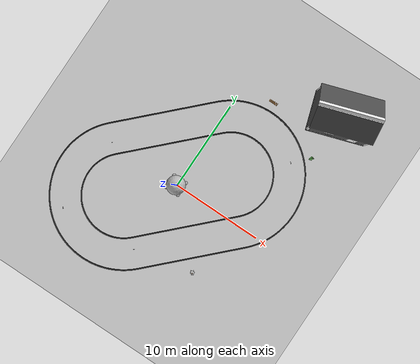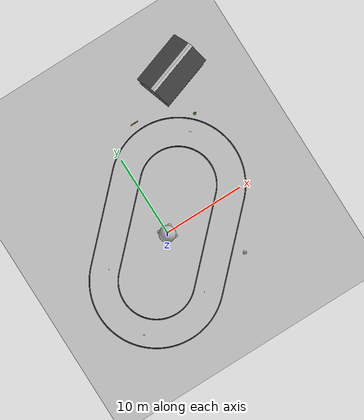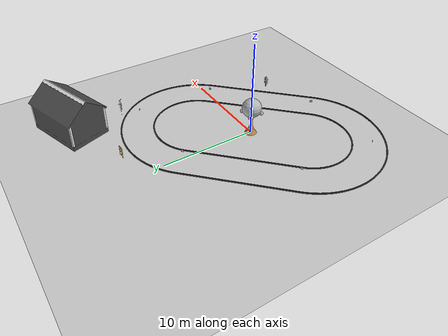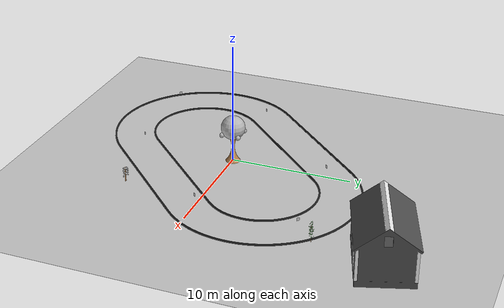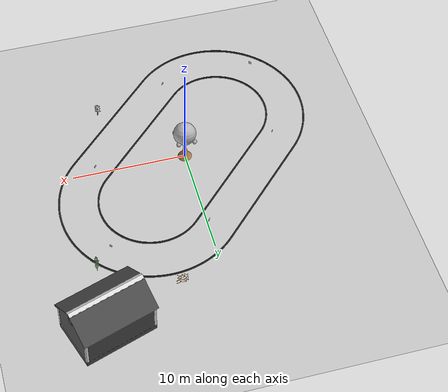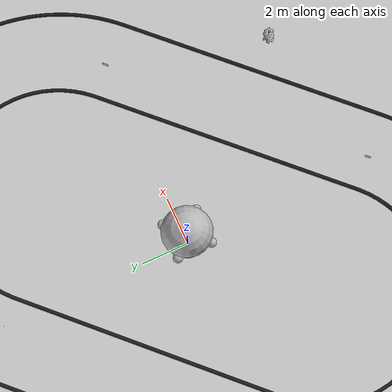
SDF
<?xml version="1.0" ?>
<sdf version="1.6">
  <world name="default">
    <gui>
      <camera name="user_camera">
        <pose frame=''>-14.5786 -15.2753 10.6425 0 0.579643 0.800194</pose>
        <view_controller>orbit</view_controller>
        <projection_type>perspective</projection_type>
      </camera>
    </gui>
    <scene>
      <sky>
        <clouds>
          <speed>12</speed>
        </clouds>
      </sky>
      <ambient>1.0 1.0 1.0 1.0</ambient>
      <shadows>true</shadows>
    </scene>

    <!-- A global light source -->
    <include>
      <uri>model://urdf/models/sun</uri>
    </include>
    <include>
      <name>track</name>
      <uri>model://urdf/models/track</uri>
      <pose>0 0 0.0762 0 0 0.785398</pose>
    </include>
    <include>
      <name>blended_plane</name>
      <uri>model://urdf/models/blended_track</uri>
      <pose>0 0 0 0 0 0.785398</pose>
    </include>
    <!-- A ground plane -->
    <include>
      <name>tree</name>
      <uri>model://urdf/models/tree</uri>
      <pose>0 0 0 0 0 0</pose>
    </include>
    <include>
      <name>bamboo</name>
      <uri>model://urdf/models/bamboo</uri>
      <pose>10 10 0 0 0 0</pose>
    </include>
    <include>
      <name>bush</name>
      <uri>model://urdf/models/bush</uri>
      <pose>6.4 -6.67 0.6 0 0 0</pose>
    </include>
    <include>
      <name>fence</name>
      <uri>model://urdf/models/fence</uri>
      <pose>3.1 12.8 0 0 0 0</pose>
    </include>
    <include>
      <name>shed</name>
      <uri>model://urdf/models/shed</uri>
      <pose>14.1 14.4 0 0 0 1.89</pose>
    </include>

    <include>
      <static>true</static>
      <name>aruco_tag_0</name>
      <uri>model://urdf/models/aruco_tag_0</uri>
      <pose>0 -8 1 0 1.57 3.93</pose>
    </include>
    <include>
      <static>true</static>
      <name>aruco_tag_1</name>
      <uri>model://urdf/models/aruco_tag_1</uri>
      <pose>8 0 1 0 1.57 3.93</pose>
    </include>
    <include>
      <static>true</static>
      <name>aruco_tag_2</name>
      <uri>model://urdf/models/aruco_tag_2</uri>
      <pose>8.5 8.5 1 0 1.57 5.50</pose>
    </include>
    <include>
      <static>true</static>
      <name>aruco_tag_3</name>
      <uri>model://urdf/models/aruco_tag_3</uri>
      <pose>0 8 1 0 1.57 .785</pose>
    </include>
    <include>
      <static>true</static>
      <name>aruco_tag_4</name>
      <uri>model://urdf/models/aruco_tag_4</uri>
      <pose>-8 0 1 0 1.57 .785</pose>
    </include>
    <include>
      <static>true</static>
      <name>aruco_tag_5</name>
      <uri>model://urdf/models/aruco_tag_5</uri>
      <pose>-8.5 -8.5 1 0 1.57 2.35</pose>
    </include>

  </world>
</sdf>

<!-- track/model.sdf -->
<sdf version="1.5">
  <model name="track">
    <static>true</static>
    <link name="link">
      <collision name="collision">
        <geometry>
          <mesh>
            <uri>model://urdf/cad/autoRallyTrack.dae</uri>
            <scale>1.0 1.0 1.0</scale>
          </mesh>
        </geometry>
        <surface>
          <friction>
            <ode>
              <mu>100</mu>
              <mu2>50</mu2>
            </ode>
          </friction>
        </surface>
      </collision>
      <visual name="visual">
        <cast_shadows>false</cast_shadows>
        <geometry>
          <mesh>
            <uri>model://urdf/cad/autoRallyTrack.dae</uri>
            <scale>1.0 1.0 1.0</scale>
          </mesh>
        </geometry>
        <material>
          <script>
            <uri>model://urdf/gazebo.material</uri>
            <name>Gazebo/Black</name>
          </script>
        </material>
      </visual>
    </link>
  </model>
</sdf>

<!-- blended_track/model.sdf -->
<sdf version="1.5">
  <model name="dirt_plane">
    <static>true</static>
    <link name="link">
      <collision name="collision">
        <geometry>
          <plane>
            <normal>0 0 1</normal>
            <size>90 90</size>
          </plane>
        </geometry>
        <laser_retro>0.0</laser_retro>
        <surface>
          <friction>
            <ode>
              <mu>100</mu>
              <mu2>50</mu2>
            </ode>
          </friction>
        </surface>
      </collision>
      <visual name="visual">
        <cast_shadows>false</cast_shadows>
        <geometry>
          <plane>
            <normal>0 0 1</normal>
            <size>90 90</size>
          </plane>
        </geometry>
        <laser_retro>0.0</laser_retro>
        <material>
          <script>
            <uri>model://urdf/gazebo.material</uri>
            <name>Gazebo/Texture_blend</name>
          </script>
        </material>
      </visual>
    </link>
  </model>
</sdf>

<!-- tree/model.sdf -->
<sdf version="1.5">
  <model name="tree">
    <static>true</static>
    <link name="trunk">
      <collision name="collision">
        <geometry>
          <mesh>
            <uri>model://urdf/cad/tree.dae</uri>
            <scale>1 1 1</scale>
          </mesh>
        </geometry>
        <surface>
          <friction>
            <ode>
              <mu>100</mu>
              <mu2>50</mu2>
            </ode>
          </friction>
        </surface>
      </collision>
      <visual name="visual">
        <cast_shadows>false</cast_shadows>
        <geometry>
          <mesh>
            <uri>model://urdf/cad/tree.dae</uri>
            <scale>1 1 1</scale>
          </mesh>
        </geometry>
        <material>
          <script>
            <uri>file://media/materials/scripts/gazebo.material</uri>
            <name>Gazebo/WoodPallet</name>
          </script>
        </material>
      </visual>
    </link>
    <link name="center_ball">
      <pose frame=''>0 0 3 0 -0 0</pose>
      <collision name="collision">
        <geometry>
          <sphere>
            <radius>1.0</radius>
          </sphere>
        </geometry>
        <surface>
          <friction>
            <ode>
              <mu>100</mu>
              <mu2>50</mu2>
            </ode>
          </friction>
        </surface>
      </collision>
      <visual name="visual">
        <cast_shadows>false</cast_shadows>
        <geometry>
          <sphere>
            <radius>1.0</radius>
          </sphere>
        </geometry>
        <material>
          <script>
            <uri>model://urdf/gazebo.material</uri>
            <name>Gazebo/Leaf_image</name>
          </script>
        </material>
      </visual>
    </link>
    <link name="ball_1">
      <pose frame=''>0.7 0.7 2.5 0 -0 0</pose>
      <collision name="collision">
        <geometry>
          <sphere>
            <radius>0.2</radius>
          </sphere>
        </geometry>
        <surface>
          <friction>
            <ode>
              <mu>100</mu>
              <mu2>50</mu2>
            </ode>
          </friction>
        </surface>
      </collision>
      <visual name="visual">
        <cast_shadows>false</cast_shadows>
        <geometry>
          <sphere>
            <radius>0.2</radius>
          </sphere>
        </geometry>
        <material>
          <script>
            <uri>model://urdf/gazebo.material</uri>
            <name>Gazebo/Leaf_image</name>
          </script>
        </material>
      </visual>
    </link>
    <link name="ball_2">
      <pose frame=''>-0.7 -0.7 2.5 0 -0 0</pose>
      <collision name="collision">
        <geometry>
          <sphere>
            <radius>0.2</radius>
          </sphere>
        </geometry>
        <surface>
          <friction>
            <ode>
              <mu>100</mu>
              <mu2>50</mu2>
            </ode>
          </friction>
        </surface>
      </collision>
      <visual name="visual">
        <cast_shadows>false</cast_shadows>
        <geometry>
          <sphere>
            <radius>0.2</radius>
          </sphere>
        </geometry>
        <material>
          <script>
            <uri>model://urdf/gazebo.material</uri>
            <name>Gazebo/Leaf_image</name>
          </script>
        </material>
      </visual>
    </link>
    <link name="ball_3">
      <pose frame=''>-0.7 0.7 2.5 0 -0 0</pose>
      <collision name="collision">
        <geometry>
          <sphere>
            <radius>0.2</radius>
          </sphere>
        </geometry>
        <surface>
          <friction>
            <ode>
              <mu>100</mu>
              <mu2>50</mu2>
            </ode>
          </friction>
        </surface>
      </collision>
      <visual name="visual">
        <cast_shadows>false</cast_shadows>
        <geometry>
          <sphere>
            <radius>0.2</radius>
          </sphere>
        </geometry>
        <material>
          <script>
            <uri>model://urdf/gazebo.material</uri>
            <name>Gazebo/Leaf_image</name>
          </script>
        </material>
      </visual>
    </link>
    <link name="ball_4">
      <pose frame=''>0.7 -0.7 2.5 0 -0 0</pose>
      <collision name="collision">
        <geometry>
          <sphere>
            <radius>0.2</radius>
          </sphere>
        </geometry>
        <surface>
          <friction>
            <ode>
              <mu>100</mu>
              <mu2>50</mu2>
            </ode>
          </friction>
        </surface>
      </collision>
      <visual name="visual">
        <cast_shadows>false</cast_shadows>
        <geometry>
          <sphere>
            <radius>0.2</radius>
          </sphere>
        </geometry>
        <material>
          <script>
            <uri>model://urdf/gazebo.material</uri>
            <name>Gazebo/Leaf_image</name>
          </script>
        </material>
      </visual>
    </link>
  </model>
</sdf>

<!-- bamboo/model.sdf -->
<sdf version="1.5">
  <model name="tree">
    <static>true</static>
    <link name="link">
      <pose frame=''>0 0 0 0 -0 0</pose>
      <collision name="collision">
        <geometry>
          <mesh>
            <uri>model://urdf/cad/bamboo_leaves.dae</uri>
            <scale>1 1 1</scale>
          </mesh>
        </geometry>
        <surface>
          <friction>
            <ode>
              <mu>100</mu>
              <mu2>50</mu2>
            </ode>
          </friction>
        </surface>
      </collision>
      <visual name="visual">
        <cast_shadows>false</cast_shadows>
        <geometry>
          <mesh>
            <uri>model://urdf/cad/bamboo_leaves.dae</uri>
            <scale>1 1 1</scale>
          </mesh>
        </geometry>
        <material>
          <script>
            <uri>model://urdf/gazebo.material</uri>
            <name>Gazebo/Grass_image</name>
          </script>
        </material>
      </visual>
    </link>
    <link name="stem">
      <collision name="collision">
        <geometry>
          <cylinder>
            <radius>0.05</radius>
            <length>1.2</length>
          </cylinder>
        </geometry>
        <surface>
          <friction>
            <ode>
              <mu>100</mu>
              <mu2>50</mu2>
            </ode>
          </friction>
        </surface>
      </collision>
      <visual name="visual">
        <cast_shadows>false</cast_shadows>
        <geometry>
          <cylinder>
            <radius>0.005</radius>
            <length>4.0</length>
          </cylinder>
        </geometry>
        <material>
          <script>
            <uri>file://media/materials/scripts/gazebo.material</uri>
            <name>Gazebo/Wood</name>
          </script>
        </material>
      </visual>
    </link>
  </model>
</sdf>

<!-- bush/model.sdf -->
<sdf version="1.5">
  <model name="bush">
    <static>true</static>
    <link name="link">
      <pose frame=''>-0.439275 0.4 0.1 0 -0 0</pose>
      <collision name="collision">
        <geometry>
          <mesh>
            <uri>model://urdf/cad/bush.dae</uri>
            <scale>1 1 1</scale>
          </mesh>
        </geometry>
        <surface>
          <friction>
            <ode>
              <mu>100</mu>
              <mu2>50</mu2>
            </ode>
          </friction>
        </surface>
      </collision>
      <visual name="visual">
        <cast_shadows>false</cast_shadows>
        <geometry>
          <mesh>
            <uri>model://urdf/cad/bush.dae</uri>
            <scale>1 1 1</scale>
          </mesh>
        </geometry>
        <material>
          <script>
            <uri>model://urdf/gazebo.material</uri>
            <name>Gazebo/Bamboo_image</name>
          </script>
        </material>
      </visual>
    </link>
    <link name="stem">
      <collision name="collision">
        <geometry>
          <cylinder>
            <radius>0.05</radius>
            <length>1.2</length>
          </cylinder>
        </geometry>
        <surface>
          <friction>
            <ode>
              <mu>100</mu>
              <mu2>50</mu2>
            </ode>
          </friction>
        </surface>
      </collision>
      <visual name="visual">
        <cast_shadows>false</cast_shadows>
        <geometry>
          <cylinder>
            <radius>0.05</radius>
            <length>1.2</length>
          </cylinder>
        </geometry>
        <material>
          <script>
            <uri>file://media/materials/scripts/gazebo.material</uri>
            <name>Gazebo/Wood</name>
          </script>
        </material>
      </visual>
    </link>
  </model>
</sdf>

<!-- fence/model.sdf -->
<sdf version="1.5">
  <model name="tree">
    <static>true</static>
    <link name="link">
      <collision name="collision">
        <geometry>
          <mesh>
            <uri>model://urdf/cad/fence.dae</uri>
            <scale>1 1 1</scale>
          </mesh>
        </geometry>
        <surface>
          <friction>
            <ode>
              <mu>100</mu>
              <mu2>50</mu2>
            </ode>
          </friction>
        </surface>
      </collision>
      <visual name="visual">
        <cast_shadows>false</cast_shadows>
        <geometry>
          <mesh>
            <uri>model://urdf/cad/fence.dae</uri>
            <scale>1 1 1</scale>
          </mesh>
        </geometry>
        <material>
          <script>
            <uri>model://urdf/gazebo.material</uri>
            <name>Gazebo/Construction_orange</name>
          </script>
        </material>
      </visual>
    </link>
  </model>
</sdf>

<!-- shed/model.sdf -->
<sdf version="1.5">
  <model name="shed">
    <static>true</static>
    <link name="walls">
      <collision name="collision">
        <geometry>
          <mesh>
            <uri>model://urdf/cad/shed_outer.dae</uri>
            <scale>1 1 1</scale>
          </mesh>
        </geometry>
        <surface>
          <friction>
            <ode>
              <mu>100</mu>
              <mu2>50</mu2>
            </ode>
          </friction>
        </surface>
      </collision>
      <visual name="visual">
        <cast_shadows>false</cast_shadows>
        <geometry>
          <mesh>
            <uri>model://urdf/cad/shed_outer.dae</uri>
            <scale>1 1 1</scale>
          </mesh>
        </geometry>
        <material>
          <script>
            <uri>model://urdf/gazebo.material</uri>
            <name>Gazebo/DarkGrey</name>
          </script>
        </material>
      </visual>
    </link>
    <link name="edges">
      <pose frame=''>0 0 0 0 -0 0</pose>
      <collision name="collision">
        <geometry>
          <mesh>
            <uri>model://urdf/cad/shed_edges.dae</uri>
            <scale>1 1 1</scale>
          </mesh>
        </geometry>
        <surface>
          <friction>
            <ode>
              <mu>100</mu>
              <mu2>50</mu2>
            </ode>
          </friction>
        </surface>
      </collision>
      <visual name="visual">
        <cast_shadows>false</cast_shadows>
        <geometry>
          <mesh>
            <uri>model://urdf/cad/shed_edges.dae</uri>
            <scale>1 1 1</scale>
          </mesh>
        </geometry>
        <material>
          <script>
            <uri>model://urdf/gazebo.material</uri>
            <name>Gazebo/White</name>
          </script>
        </material>
      </visual>
    </link>
  </model>
</sdf>

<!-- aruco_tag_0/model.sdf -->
<sdf version="1.0">
  <model name="aruco_tag_0">
    <static>true</static>
    <link name="link">
      <visual name="visual">
        <cast_shadows>false</cast_shadows>
        <geometry>
          <plane>
            <normal>0 1 0</normal>
            <size>.25 .25</size>
          </plane>
        </geometry>
        <material>
          <script>
                <uri>model://urdf/models/aruco_tag_0/materials/scripts</uri>
                <uri>model://urdf/models/aruco_tag_0/materials/textures</uri>
                <name>aruco/tag0</name>
          </script>
        </material>
      </visual>
    </link>
  </model>
</sdf>

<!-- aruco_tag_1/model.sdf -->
<sdf version="1.0">
  <model name="aruco_tag_1">
    <static>true</static>
    <link name="link">
      <visual name="visual">
        <cast_shadows>false</cast_shadows>
        <geometry>
          <plane>
            <normal>0 1 0</normal>
            <size>.25 .25</size>
          </plane>
        </geometry>
        <material>
          <script>
                <uri>model://urdf/models/aruco_tag_1/materials/scripts</uri>
                <uri>model://urdf/models/aruco_tag_1/materials/textures</uri>
                <name>aruco/tag1</name>
          </script>
        </material>
      </visual>
    </link>
  </model>
</sdf>

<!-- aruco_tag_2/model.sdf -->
<sdf version="1.0">
  <model name="aruco_tag_2">
    <static>true</static>
    <link name="link">

      <visual name="visual">
        <cast_shadows>false</cast_shadows>
        <geometry>
          <plane>
            <normal>0 1 0</normal>
            <size>.25 .25</size>
          </plane>
        </geometry>
        <material>
          <script>
                <uri>model://urdf/models/aruco_tag_2/materials/scripts</uri>
                <uri>model://urdf/models/aruco_tag_2/materials/textures</uri>
                <name>aruco/tag2</name>
          </script>
        </material>
      </visual>
    </link>
  </model>
</sdf>

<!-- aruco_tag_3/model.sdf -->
<sdf version="1.0">
  <model name="aruco_tag_3">
    <static>true</static>
    <link name="link">
      <visual name="visual">
        <cast_shadows>false</cast_shadows>
        <geometry>
          <plane>
            <normal>0 1 0</normal>
            <size>.25 .25</size>
          </plane>
        </geometry>
        <material>
          <script>
                <uri>model://urdf/models/aruco_tag_3/materials/scripts</uri>
                <uri>model://urdf/models/aruco_tag_3/materials/textures</uri>
                <name>aruco/tag3</name>
          </script>
        </material>
      </visual>
    </link>
  </model>
</sdf>

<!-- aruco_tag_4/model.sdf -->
<sdf version="1.0">
  <model name="aruco_tag_4">
    <static>true</static>
    <link name="link">
      <visual name="visual">
        <cast_shadows>false</cast_shadows>
        <geometry>
          <plane>
            <normal>0 1 0</normal>
            <size>.25 .25</size>
          </plane>
        </geometry>
        <material>
          <script>
                <uri>model://urdf/models/aruco_tag_4/materials/scripts</uri>
                <uri>model://urdf/models/aruco_tag_4/materials/textures</uri>
                <name>aruco/tag4
</name>
          </script>
        </material>
      </visual>
    </link>
  </model>
</sdf>

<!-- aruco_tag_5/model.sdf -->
<sdf version="1.0">
  <model name="aruco_tag_5">
    <static>true</static>
    <link name="link">
      <visual name="visual">
        <cast_shadows>false</cast_shadows>
        <geometry>
          <plane>
            <normal>0 1 0</normal>
            <size>.25 .25</size>
          </plane>
        </geometry>
        <material>
          <script>
                <uri>model://urdf/models/aruco_tag_5/materials/scripts</uri>
                <uri>model://urdf/models/aruco_tag_5/materials/textures</uri>
                <name>aruco/tag5</name>
          </script>
        </material>
      </visual>
    </link>
  </model>
</sdf>
